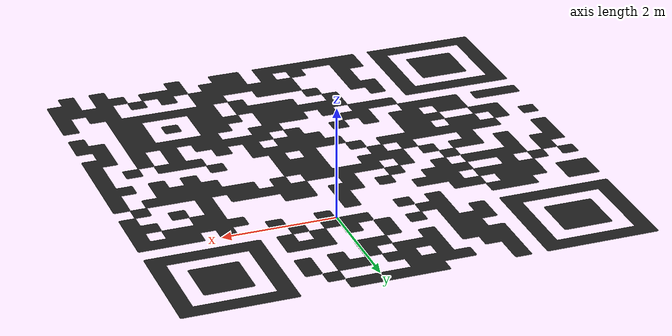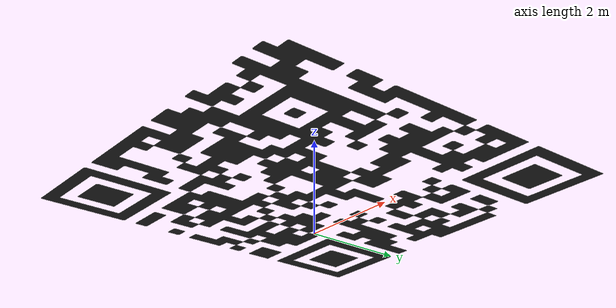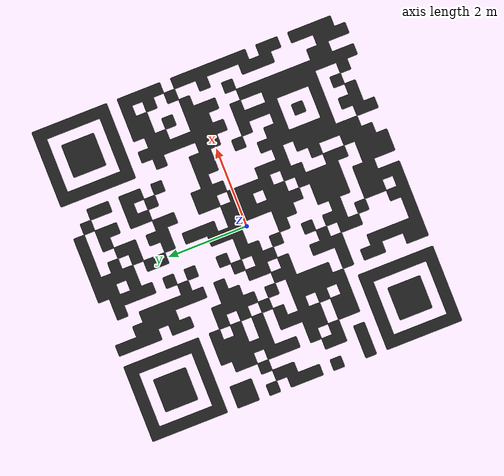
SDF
<?xml version="1.0" ?>
<sdf version="1.6">
  <model name="thequickbrownfoxjumpsoverthelazydog_l">
    <pose>0 0 1 0 0 0</pose>
    <static>true</static>
    <link name="link">
      <visual name="visual">
        <geometry>
          <mesh>
            <scale>10 10 0.000001</scale>
            <uri>model://QR_03/meshes/thequickbrownfoxjumpsoverthelazydog_l.stl</uri>
          </mesh>
        </geometry>
        <material>
          <script>
            <name>Gazebo/Black</name>
          </script>
        </material>
      </visual>
    </link>
  </model>
</sdf>
